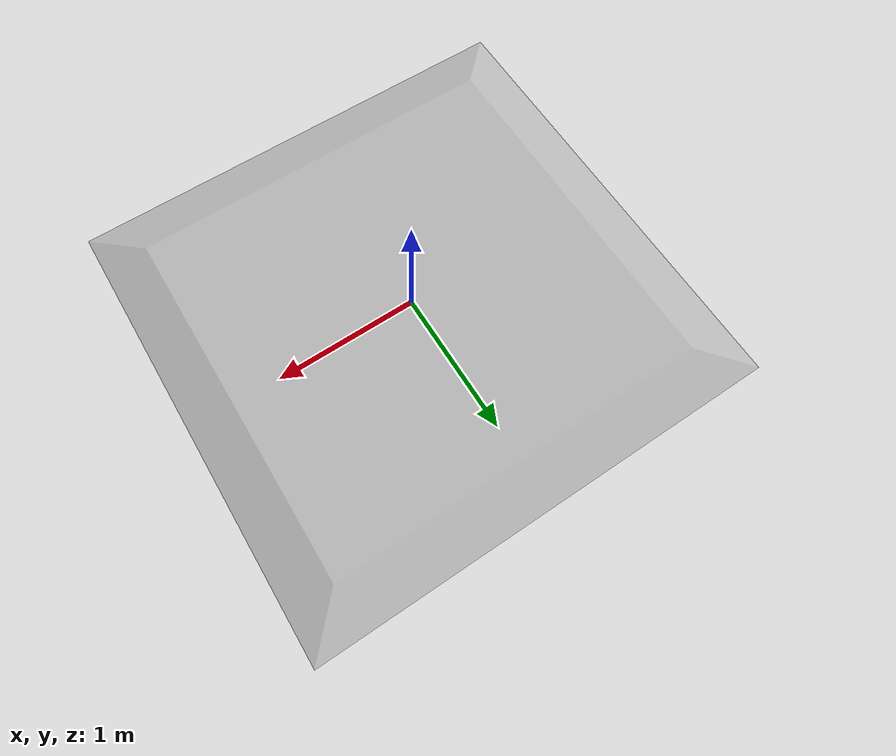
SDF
<?xml version="1.0" ?>
<sdf version="1.5">
  <model name="frc2018_field">
    <static>true</static>
    <link name="field">

      <!-- Visual of the field -->
      <visual name="field_visual">
        <geometry>
          <mesh>
            <uri>model://Gazebo2018/frc2018_field/meshes/field.obj</uri>
          </mesh>
        </geometry>
      </visual>

      <!-- Collision geometries -->
      <collision name="floor_collision">
        <geometry>
          <plane>
            <normal>0 0 1</normal>
            <size>100 100</size>
          </plane>
        </geometry>
        <surface>
          <friction>
            <ode>
              <mu>100</mu>
              <mu2>50</mu2>
            </ode>
          </friction>
        </surface>
      </collision>
      <collision name='blue_wall_collision'>
        <pose>0 -8.245 1 0 0 0</pose>
        <geometry>
          <box>
            <size>6.75 0.05 2</size>
          </box>
        </geometry>
      </collision>
      <collision name='red_wall_collision'>
        <pose>0 8.245 1 0 0 0</pose>
        <geometry>
          <box>
            <size>6.75 0.05 2</size>
          </box>
        </geometry>
      </collision>
      <collision name='side1_wall_collision'>
        <pose>-4.13911 0 0.25 0 0 0</pose>
        <geometry>
          <box>
            <size>0.05 14.7 0.5</size>
          </box>
        </geometry>
      </collision>
      <collision name='side2_wall_collision'>
        <pose>4.13911 0 0.25 0 0 0</pose>
        <geometry>
          <box>
            <size>0.05 14.7 0.5</size>
          </box>
        </geometry>
      </collision>
      <collision name='blue_corner1_collision'>
        <pose>-3.76153 -7.78821 1 0 0 0.6719518</pose>
        <geometry>
          <box>
            <size>0.05 1.1 2</size>
          </box>
        </geometry>
      </collision>
      <collision name='blue_corner2_collision'>
        <pose>3.76153 -7.78821 1 0 0 -0.6719518</pose>
        <geometry>
          <box>
            <size>0.05 1.1 2</size>
          </box>
        </geometry>
      </collision>
      <collision name='red_corner1_collision'>
        <pose>-3.76153 7.78821 1 0 0 -0.6719518</pose>
        <geometry>
          <box>
            <size>0.05 1.1 2</size>
          </box>
        </geometry>
      </collision>
      <collision name='red_corner2_collision'>
        <pose>3.76153 7.78821 1 0 0 0.6719518</pose>
        <geometry>
          <box>
            <size>0.05 1.1 2</size>
          </box>
        </geometry>
      </collision>
      <collision name='blue_smallstep_left_collision'>
        <pose>-0.346418 -8.13736 -0.016684 -0.287855408 0.2458331158 -0.0650609876</pose>
        <geometry>
          <box>
            <size>0.2 0.2 0.025</size>
          </box>
        </geometry>
      </collision>
      <collision name='blue_smallstep_center_collision'>
        <pose>-0.746 -8.12854 0.006782 -0.270805287 0 0</pose>
        <geometry>
          <box>
            <size>0.61 0.2 0.025</size>
          </box>
        </geometry>
      </collision>
      <collision name='blue_smallstep_right_collision'>
        <pose>-1.14558 -8.13736 -0.016684  -0.287855408 -0.2458331158 0.0650609876</pose>
        <geometry>
          <box>
            <size>0.2 0.2 0.025</size>
          </box>
        </geometry>
      </collision>
      <collision name='red_smallstep_left_collision'>
        <pose>0.346418 8.13736 -0.016684 -0.287855408 0.2458331158 3.07653166599</pose>
        <geometry>
          <box>
            <size>0.2 0.2 0.025</size>
          </box>
        </geometry>
      </collision>
      <collision name='red_smallstep_center_collision'>
        <pose>0.746 8.12854 0.006782 -0.270805287 0 3.14159265359</pose>
        <geometry>
          <box>
            <size>0.61 0.2 0.025</size>
          </box>
        </geometry>
      </collision>
      <collision name='red_smallstep_right_collision'>
        <pose>1.14558 8.13736 -0.016684  -0.287855408 -0.2458331158 3.20665364119</pose>
        <geometry>
          <box>
            <size>0.2 0.2 0.025</size>
          </box>
        </geometry>
      </collision>
      <collision name='blue_switchwall_near_collision'>
        <pose>0 -4.65 0.223 0 0 0</pose>
        <geometry>
          <box>
            <size>3.9 0.05 0.5</size>
          </box>
        </geometry>
      </collision>
      <collision name='blue_switchwall_far_collision'>
        <pose>0 -3.27 0.223 0 0 0</pose>
        <geometry>
          <box>
            <size>3.9 0.05 0.5</size>
          </box>
        </geometry>
      </collision>
      <collision name='blue_switchwall_side1_collision'>
        <pose>-1.925 -3.96 0.223 0 0 0</pose>
        <geometry>
          <box>
            <size>0.05 1.33 0.5</size>
          </box>
        </geometry>
      </collision>
      <collision name='blue_switchwall_side2_collision'>
        <pose>1.925 -3.96 0.223 0 0 0</pose>
        <geometry>
          <box>
            <size>0.05 1.33 0.5</size>
          </box>
        </geometry>
      </collision>
      <collision name='red_switchwall_near_collision'>
        <pose>0 4.65 0.223 0 0 0</pose>
        <geometry>
          <box>
            <size>3.9 0.05 0.5</size>
          </box>
        </geometry>
      </collision>
      <collision name='red_switchwall_far_collision'>
        <pose>0 3.27 0.223 0 0 0</pose>
        <geometry>
          <box>
            <size>3.9 0.05 0.5</size>
          </box>
        </geometry>
      </collision>
      <collision name='red_switchwall_side1_collision'>
        <pose>-1.925 3.96 0.223 0 0 0</pose>
        <geometry>
          <box>
            <size>0.05 1.33 0.5</size>
          </box>
        </geometry>
      </collision>
      <collision name='red_switchwall_side2_collision'>
        <pose>1.925 3.96 0.223 0 0 0</pose>
        <geometry>
          <box>
            <size>0.05 1.33 0.5</size>
          </box>
        </geometry>
      </collision>
      <collision name='tower_side1_collision'>
        <pose>-0.237202 0 -0.071719 0 -0.698131701 0</pose>
        <geometry>
          <box>
            <size>2 0.44 2</size>
          </box>
        </geometry>
      </collision>
      <collision name='tower_side2_collision'>
        <pose>0.237202 0 -0.071719 0 0.698131701 0</pose>
        <geometry>
          <box>
            <size>2 0.44 2</size>
          </box>
        </geometry>
      </collision>
      <collision name='tower_bluecenter_collision'>
        <pose>0 -0.25 1.07 0 0 0</pose>
        <geometry>
          <box>
            <size>0.43 0.05 2.14</size>
          </box>
        </geometry>
      </collision>
      <collision name='tower_redcenter_collision'>
        <pose>0 0.25 1.07 0 0 0</pose>
        <geometry>
          <box>
            <size>0.43 0.05 2.14</size>
          </box>
        </geometry>
      </collision>
      <collision name='tower_step_collision'>
        <pose>0 0 0 0 0 0</pose>
        <geometry>
          <mesh>
            <uri>model://Gazebo2018/frc2018_field/meshes/field_centerstep_collision.obj</uri>
          </mesh>
        </geometry>
      </collision>

    </link>
  </model>
</sdf>
